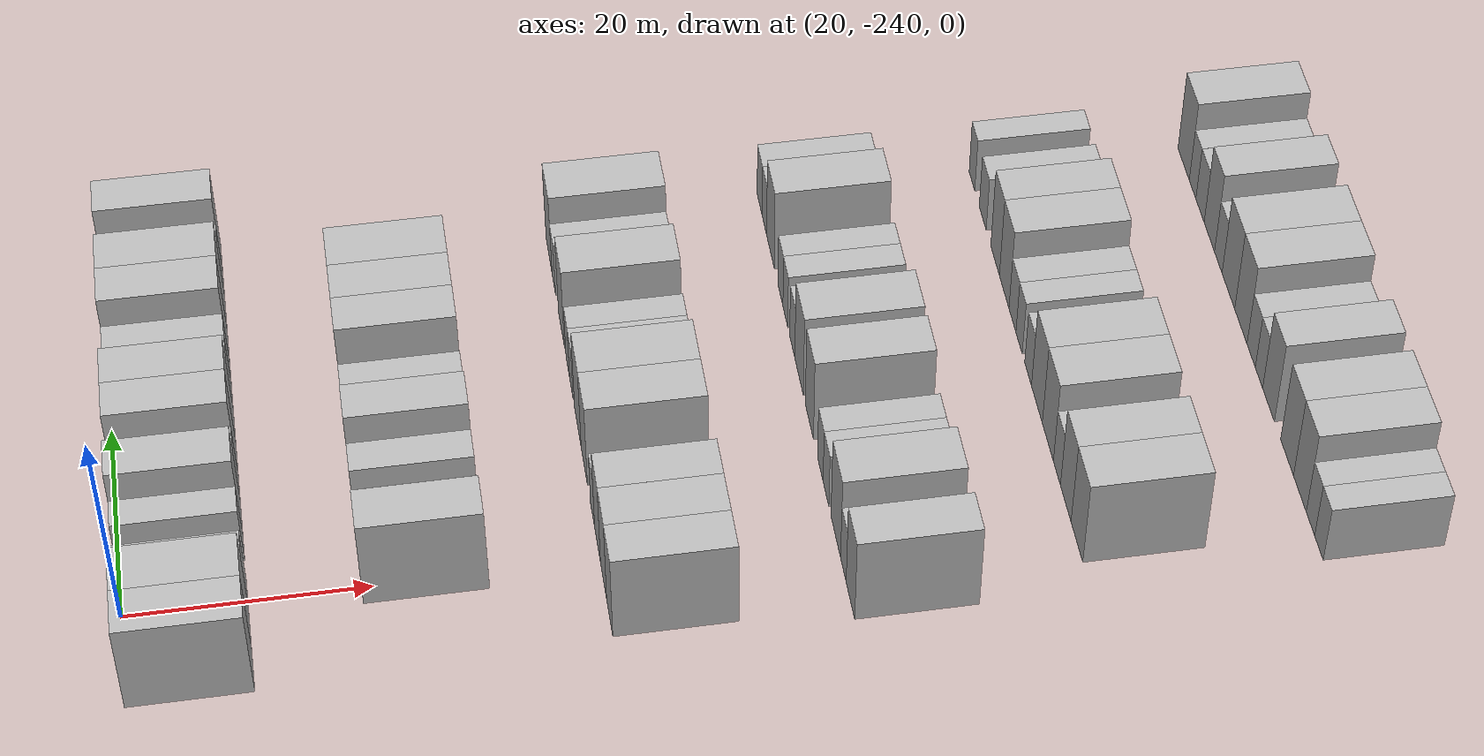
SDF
<sdf version="1.6">
 <world name="default">
  <model name="building_28">
   <static>1</static>
   <pose>25.0000 -246.9966 0 0.000000 0.000000 0.000000</pose>
   <link name="link">
    <pose>0 0 4.50 0 0 0</pose>
    <collision name="collision"><geometry><box><size>10.0000 4.2237 9.0000</size></box></geometry></collision>
    <visual name="visual">
     <cast_shadows>0</cast_shadows>
     <geometry><box><size>10.0000 4.2237 9.0000</size></box></geometry>
     <material>
      <script>
       <uri>model://HANNAS_wall/materials/scripts</uri>
       <uri>model://HANNAS_wall/materials/textures</uri>
       <name>vrc/HANNAS_wall</name>
      </script>
     </material>
    </visual>
   </link>
  </model>
  <model name="building_29">
   <static>1</static>
   <pose>25.0000 -242.7215 0 0.000000 0.000000 0.000000</pose>
   <link name="link">
    <pose>0 0 4.50 0 0 0</pose>
    <collision name="collision"><geometry><box><size>10.0000 4.3265 9.0000</size></box></geometry></collision>
    <visual name="visual">
     <cast_shadows>0</cast_shadows>
     <geometry><box><size>10.0000 4.3265 9.0000</size></box></geometry>
     <material>
      <script>
       <uri>model://HANNAS_wall/materials/scripts</uri>
       <uri>model://HANNAS_wall/materials/textures</uri>
       <name>vrc/HANNAS_wall</name>
      </script>
     </material>
    </visual>
   </link>
  </model>
  <model name="building_30">
   <static>1</static>
   <pose>25.0000 -239.1550 0 0.000000 0.000000 0.000000</pose>
   <link name="link">
    <pose>0 0 3.00 0 0 0</pose>
    <collision name="collision"><geometry><box><size>10.0000 2.8065 6.0000</size></box></geometry></collision>
    <visual name="visual">
     <cast_shadows>0</cast_shadows>
     <geometry><box><size>10.0000 2.8065 6.0000</size></box></geometry>
     <material>
      <script>
       <uri>model://HANNAS_wall/materials/scripts</uri>
       <uri>model://HANNAS_wall/materials/textures</uri>
       <name>vrc/HANNAS_wall</name>
      </script>
     </material>
    </visual>
   </link>
  </model>
  <model name="building_31">
   <static>1</static>
   <pose>25.0000 -234.4203 0 0.000000 0.000000 0.000000</pose>
   <link name="link">
    <pose>0 0 3.00 0 0 0</pose>
    <collision name="collision"><geometry><box><size>10.0000 2.6629 6.0000</size></box></geometry></collision>
    <visual name="visual">
     <cast_shadows>0</cast_shadows>
     <geometry><box><size>10.0000 2.6629 6.0000</size></box></geometry>
     <material>
      <script>
       <uri>model://HANNAS_wall/materials/scripts</uri>
       <uri>model://HANNAS_wall/materials/textures</uri>
       <name>vrc/HANNAS_wall</name>
      </script>
     </material>
    </visual>
   </link>
  </model>
  <model name="building_32">
   <static>1</static>
   <pose>25.0000 -231.2151 0 0.000000 0.000000 0.000000</pose>
   <link name="link">
    <pose>0 0 4.50 0 0 0</pose>
    <collision name="collision"><geometry><box><size>10.0000 3.7475 9.0000</size></box></geometry></collision>
    <visual name="visual">
     <cast_shadows>0</cast_shadows>
     <geometry><box><size>10.0000 3.7475 9.0000</size></box></geometry>
     <material>
      <script>
       <uri>model://HANNAS_wall/materials/scripts</uri>
       <uri>model://HANNAS_wall/materials/textures</uri>
       <name>vrc/HANNAS_wall</name>
      </script>
     </material>
    </visual>
   </link>
  </model>
  <model name="building_33">
   <static>1</static>
   <pose>25.0000 -228.0153 0 0.000000 0.000000 0.000000</pose>
   <link name="link">
    <pose>0 0 3.00 0 0 0</pose>
    <collision name="collision"><geometry><box><size>10.0000 2.6523 6.0000</size></box></geometry></collision>
    <visual name="visual">
     <cast_shadows>0</cast_shadows>
     <geometry><box><size>10.0000 2.6523 6.0000</size></box></geometry>
     <material>
      <script>
       <uri>model://HANNAS_wall/materials/scripts</uri>
       <uri>model://HANNAS_wall/materials/textures</uri>
       <name>vrc/HANNAS_wall</name>
      </script>
     </material>
    </visual>
   </link>
  </model>
  <model name="building_34">
   <static>1</static>
   <pose>25.0000 -224.8545 0 0.000000 0.000000 0.000000</pose>
   <link name="link">
    <pose>0 0 4.50 0 0 0</pose>
    <collision name="collision"><geometry><box><size>10.0000 3.6692 9.0000</size></box></geometry></collision>
    <visual name="visual">
     <cast_shadows>0</cast_shadows>
     <geometry><box><size>10.0000 3.6692 9.0000</size></box></geometry>
     <material>
      <script>
       <uri>model://HANNAS_wall/materials/scripts</uri>
       <uri>model://HANNAS_wall/materials/textures</uri>
       <name>vrc/HANNAS_wall</name>
      </script>
     </material>
    </visual>
   </link>
  </model>
  <model name="building_35">
   <static>1</static>
   <pose>25.0000 -221.1107 0 0.000000 0.000000 0.000000</pose>
   <link name="link">
    <pose>0 0 4.50 0 0 0</pose>
    <collision name="collision"><geometry><box><size>10.0000 3.8185 9.0000</size></box></geometry></collision>
    <visual name="visual">
     <cast_shadows>0</cast_shadows>
     <geometry><box><size>10.0000 3.8185 9.0000</size></box></geometry>
     <material>
      <script>
       <uri>model://HANNAS_wall/materials/scripts</uri>
       <uri>model://HANNAS_wall/materials/textures</uri>
       <name>vrc/HANNAS_wall</name>
      </script>
     </material>
    </visual>
   </link>
  </model>
  <model name="building_36">
   <static>1</static>
   <pose>25.0000 -217.7368 0 0.000000 0.000000 0.000000</pose>
   <link name="link">
    <pose>0 0 3.00 0 0 0</pose>
    <collision name="collision"><geometry><box><size>10.0000 2.9292 6.0000</size></box></geometry></collision>
    <visual name="visual">
     <cast_shadows>0</cast_shadows>
     <geometry><box><size>10.0000 2.9292 6.0000</size></box></geometry>
     <material>
      <script>
       <uri>model://HANNAS_wall/materials/scripts</uri>
       <uri>model://HANNAS_wall/materials/textures</uri>
       <name>vrc/HANNAS_wall</name>
      </script>
     </material>
    </visual>
   </link>
  </model>
  <model name="building_37">
   <static>1</static>
   <pose>25.0000 -215.0235 0 0.000000 0.000000 0.000000</pose>
   <link name="link">
    <pose>0 0 3.00 0 0 0</pose>
    <collision name="collision"><geometry><box><size>10.0000 2.4975 6.0000</size></box></geometry></collision>
    <visual name="visual">
     <cast_shadows>0</cast_shadows>
     <geometry><box><size>10.0000 2.4975 6.0000</size></box></geometry>
     <material>
      <script>
       <uri>model://HANNAS_wall/materials/scripts</uri>
       <uri>model://HANNAS_wall/materials/textures</uri>
       <name>vrc/HANNAS_wall</name>
      </script>
     </material>
    </visual>
   </link>
  </model>
  <model name="building_38">
   <static>1</static>
   <pose>25.0000 -211.8472 0 0.000000 0.000000 0.000000</pose>
   <link name="link">
    <pose>0 0 4.50 0 0 0</pose>
    <collision name="collision"><geometry><box><size>10.0000 3.8551 9.0000</size></box></geometry></collision>
    <visual name="visual">
     <cast_shadows>0</cast_shadows>
     <geometry><box><size>10.0000 3.8551 9.0000</size></box></geometry>
     <material>
      <script>
       <uri>model://HANNAS_wall/materials/scripts</uri>
       <uri>model://HANNAS_wall/materials/textures</uri>
       <name>vrc/HANNAS_wall</name>
      </script>
     </material>
    </visual>
   </link>
  </model>
  <model name="building_39">
   <static>1</static>
   <pose>25.0000 -207.8907 0 0.000000 0.000000 0.000000</pose>
   <link name="link">
    <pose>0 0 4.50 0 0 0</pose>
    <collision name="collision"><geometry><box><size>10.0000 4.0579 9.0000</size></box></geometry></collision>
    <visual name="visual">
     <cast_shadows>0</cast_shadows>
     <geometry><box><size>10.0000 4.0579 9.0000</size></box></geometry>
     <material>
      <script>
       <uri>model://HANNAS_wall/materials/scripts</uri>
       <uri>model://HANNAS_wall/materials/textures</uri>
       <name>vrc/HANNAS_wall</name>
      </script>
     </material>
    </visual>
   </link>
  </model>
  <model name="building_40">
   <static>1</static>
   <pose>25.0000 -204.4781 0 0.000000 0.000000 0.000000</pose>
   <link name="link">
    <pose>0 0 3.00 0 0 0</pose>
    <collision name="collision"><geometry><box><size>10.0000 2.7674 6.0000</size></box></geometry></collision>
    <visual name="visual">
     <cast_shadows>0</cast_shadows>
     <geometry><box><size>10.0000 2.7674 6.0000</size></box></geometry>
     <material>
      <script>
       <uri>model://HANNAS_wall/materials/scripts</uri>
       <uri>model://HANNAS_wall/materials/textures</uri>
       <name>vrc/HANNAS_wall</name>
      </script>
     </material>
    </visual>
   </link>
  </model>
  <model name="building_41">
   <static>1</static>
   <pose>25.0000 -201.2248 0 0.000000 0.000000 0.000000</pose>
   <link name="link">
    <pose>0 0 4.50 0 0 0</pose>
    <collision name="collision"><geometry><box><size>10.0000 3.7392 9.0000</size></box></geometry></collision>
    <visual name="visual">
     <cast_shadows>0</cast_shadows>
     <geometry><box><size>10.0000 3.7392 9.0000</size></box></geometry>
     <material>
      <script>
       <uri>model://HANNAS_wall/materials/scripts</uri>
       <uri>model://HANNAS_wall/materials/textures</uri>
       <name>vrc/HANNAS_wall</name>
      </script>
     </material>
    </visual>
   </link>
  </model>
  <model name="building_191">
   <static>1</static>
   <pose>44.0000 -239.6040 0 0.000000 0.000000 0.000000</pose>
   <link name="link">
    <pose>0 0 4.50 0 0 0</pose>
    <collision name="collision"><geometry><box><size>10.0000 4.0333 9.0000</size></box></geometry></collision>
    <visual name="visual">
     <cast_shadows>0</cast_shadows>
     <geometry><box><size>10.0000 4.0333 9.0000</size></box></geometry>
     <material>
      <script>
       <uri>model://HANNAS_wall/materials/scripts</uri>
       <uri>model://HANNAS_wall/materials/textures</uri>
       <name>vrc/HANNAS_wall</name>
      </script>
     </material>
    </visual>
   </link>
  </model>
  <model name="building_192">
   <static>1</static>
   <pose>44.0000 -236.2359 0 0.000000 0.000000 0.000000</pose>
   <link name="link">
    <pose>0 0 3.00 0 0 0</pose>
    <collision name="collision"><geometry><box><size>10.0000 2.7029 6.0000</size></box></geometry></collision>
    <visual name="visual">
     <cast_shadows>0</cast_shadows>
     <geometry><box><size>10.0000 2.7029 6.0000</size></box></geometry>
     <material>
      <script>
       <uri>model://HANNAS_wall/materials/scripts</uri>
       <uri>model://HANNAS_wall/materials/textures</uri>
       <name>vrc/HANNAS_wall</name>
      </script>
     </material>
    </visual>
   </link>
  </model>
  <model name="building_193">
   <static>1</static>
   <pose>44.0000 -231.3891 0 0.000000 0.000000 0.000000</pose>
   <link name="link">
    <pose>0 0 3.00 0 0 0</pose>
    <collision name="collision"><geometry><box><size>10.0000 2.9909 6.0000</size></box></geometry></collision>
    <visual name="visual">
     <cast_shadows>0</cast_shadows>
     <geometry><box><size>10.0000 2.9909 6.0000</size></box></geometry>
     <material>
      <script>
       <uri>model://HANNAS_wall/materials/scripts</uri>
       <uri>model://HANNAS_wall/materials/textures</uri>
       <name>vrc/HANNAS_wall</name>
      </script>
     </material>
    </visual>
   </link>
  </model>
  <model name="building_194">
   <static>1</static>
   <pose>44.0000 -228.0732 0 0.000000 0.000000 0.000000</pose>
   <link name="link">
    <pose>0 0 4.50 0 0 0</pose>
    <collision name="collision"><geometry><box><size>10.0000 3.6408 9.0000</size></box></geometry></collision>
    <visual name="visual">
     <cast_shadows>0</cast_shadows>
     <geometry><box><size>10.0000 3.6408 9.0000</size></box></geometry>
     <material>
      <script>
       <uri>model://HANNAS_wall/materials/scripts</uri>
       <uri>model://HANNAS_wall/materials/textures</uri>
       <name>vrc/HANNAS_wall</name>
      </script>
     </material>
    </visual>
   </link>
  </model>
  <model name="building_195">
   <static>1</static>
   <pose>44.0000 -225.0238 0 0.000000 0.000000 0.000000</pose>
   <link name="link">
    <pose>0 0 3.00 0 0 0</pose>
    <collision name="collision"><geometry><box><size>10.0000 2.4579 6.0000</size></box></geometry></collision>
    <visual name="visual">
     <cast_shadows>0</cast_shadows>
     <geometry><box><size>10.0000 2.4579 6.0000</size></box></geometry>
     <material>
      <script>
       <uri>model://HANNAS_wall/materials/scripts</uri>
       <uri>model://HANNAS_wall/materials/textures</uri>
       <name>vrc/HANNAS_wall</name>
      </script>
     </material>
    </visual>
   </link>
  </model>
  <model name="building_196">
   <static>1</static>
   <pose>44.0000 -222.4413 0 0.000000 0.000000 0.000000</pose>
   <link name="link">
    <pose>0 0 3.00 0 0 0</pose>
    <collision name="collision"><geometry><box><size>10.0000 2.7071 6.0000</size></box></geometry></collision>
    <visual name="visual">
     <cast_shadows>0</cast_shadows>
     <geometry><box><size>10.0000 2.7071 6.0000</size></box></geometry>
     <material>
      <script>
       <uri>model://HANNAS_wall/materials/scripts</uri>
       <uri>model://HANNAS_wall/materials/textures</uri>
       <name>vrc/HANNAS_wall</name>
      </script>
     </material>
    </visual>
   </link>
  </model>
  <model name="building_197">
   <static>1</static>
   <pose>44.0000 -218.2252 0 0.000000 0.000000 0.000000</pose>
   <link name="link">
    <pose>0 0 4.50 0 0 0</pose>
    <collision name="collision"><geometry><box><size>10.0000 3.7250 9.0000</size></box></geometry></collision>
    <visual name="visual">
     <cast_shadows>0</cast_shadows>
     <geometry><box><size>10.0000 3.7250 9.0000</size></box></geometry>
     <material>
      <script>
       <uri>model://HANNAS_wall/materials/scripts</uri>
       <uri>model://HANNAS_wall/materials/textures</uri>
       <name>vrc/HANNAS_wall</name>
      </script>
     </material>
    </visual>
   </link>
  </model>
  <model name="building_198">
   <static>1</static>
   <pose>44.0000 -214.4440 0 0.000000 0.000000 0.000000</pose>
   <link name="link">
    <pose>0 0 4.50 0 0 0</pose>
    <collision name="collision"><geometry><box><size>10.0000 3.8374 9.0000</size></box></geometry></collision>
    <visual name="visual">
     <cast_shadows>0</cast_shadows>
     <geometry><box><size>10.0000 3.8374 9.0000</size></box></geometry>
     <material>
      <script>
       <uri>model://HANNAS_wall/materials/scripts</uri>
       <uri>model://HANNAS_wall/materials/textures</uri>
       <name>vrc/HANNAS_wall</name>
      </script>
     </material>
    </visual>
   </link>
  </model>
  <model name="building_199">
   <static>1</static>
   <pose>44.0000 -210.3079 0 0.000000 0.000000 0.000000</pose>
   <link name="link">
    <pose>0 0 4.50 0 0 0</pose>
    <collision name="collision"><geometry><box><size>10.0000 4.4347 9.0000</size></box></geometry></collision>
    <visual name="visual">
     <cast_shadows>0</cast_shadows>
     <geometry><box><size>10.0000 4.4347 9.0000</size></box></geometry>
     <material>
      <script>
       <uri>model://HANNAS_wall/materials/scripts</uri>
       <uri>model://HANNAS_wall/materials/textures</uri>
       <name>vrc/HANNAS_wall</name>
      </script>
     </material>
    </visual>
   </link>
  </model>
  <model name="building_200">
   <static>1</static>
   <pose>44.0000 -206.6246 0 0.000000 0.000000 0.000000</pose>
   <link name="link">
    <pose>0 0 3.00 0 0 0</pose>
    <collision name="collision"><geometry><box><size>10.0000 2.9321 6.0000</size></box></geometry></collision>
    <visual name="visual">
     <cast_shadows>0</cast_shadows>
     <geometry><box><size>10.0000 2.9321 6.0000</size></box></geometry>
     <material>
      <script>
       <uri>model://HANNAS_wall/materials/scripts</uri>
       <uri>model://HANNAS_wall/materials/textures</uri>
       <name>vrc/HANNAS_wall</name>
      </script>
     </material>
    </visual>
   </link>
  </model>
  <model name="building_371">
   <static>1</static>
   <pose>63.0000 -246.1018 0 0.000000 0.000000 0.000000</pose>
   <link name="link">
    <pose>0 0 4.50 0 0 0</pose>
    <collision name="collision"><geometry><box><size>10.0000 3.7939 9.0000</size></box></geometry></collision>
    <visual name="visual">
     <cast_shadows>0</cast_shadows>
     <geometry><box><size>10.0000 3.7939 9.0000</size></box></geometry>
     <material>
      <script>
       <uri>model://HANNAS_wall/materials/scripts</uri>
       <uri>model://HANNAS_wall/materials/textures</uri>
       <name>vrc/HANNAS_wall</name>
      </script>
     </material>
    </visual>
   </link>
  </model>
  <model name="building_372">
   <static>1</static>
   <pose>63.0000 -242.2751 0 0.000000 0.000000 0.000000</pose>
   <link name="link">
    <pose>0 0 4.50 0 0 0</pose>
    <collision name="collision"><geometry><box><size>10.0000 3.8596 9.0000</size></box></geometry></collision>
    <visual name="visual">
     <cast_shadows>0</cast_shadows>
     <geometry><box><size>10.0000 3.8596 9.0000</size></box></geometry>
     <material>
      <script>
       <uri>model://HANNAS_wall/materials/scripts</uri>
       <uri>model://HANNAS_wall/materials/textures</uri>
       <name>vrc/HANNAS_wall</name>
      </script>
     </material>
    </visual>
   </link>
  </model>
  <model name="building_373">
   <static>1</static>
   <pose>63.0000 -238.5086 0 0.000000 0.000000 0.000000</pose>
   <link name="link">
    <pose>0 0 4.50 0 0 0</pose>
    <collision name="collision"><geometry><box><size>10.0000 3.6732 9.0000</size></box></geometry></collision>
    <visual name="visual">
     <cast_shadows>0</cast_shadows>
     <geometry><box><size>10.0000 3.6732 9.0000</size></box></geometry>
     <material>
      <script>
       <uri>model://HANNAS_wall/materials/scripts</uri>
       <uri>model://HANNAS_wall/materials/textures</uri>
       <name>vrc/HANNAS_wall</name>
      </script>
     </material>
    </visual>
   </link>
  </model>
  <model name="building_374">
   <static>1</static>
   <pose>63.0000 -235.3271 0 0.000000 0.000000 0.000000</pose>
   <link name="link">
    <pose>0 0 3.00 0 0 0</pose>
    <collision name="collision"><geometry><box><size>10.0000 2.6899 6.0000</size></box></geometry></collision>
    <visual name="visual">
     <cast_shadows>0</cast_shadows>
     <geometry><box><size>10.0000 2.6899 6.0000</size></box></geometry>
     <material>
      <script>
       <uri>model://HANNAS_wall/materials/scripts</uri>
       <uri>model://HANNAS_wall/materials/textures</uri>
       <name>vrc/HANNAS_wall</name>
      </script>
     </material>
    </visual>
   </link>
  </model>
  <model name="building_375">
   <static>1</static>
   <pose>63.0000 -229.9203 0 0.000000 0.000000 0.000000</pose>
   <link name="link">
    <pose>0 0 4.50 0 0 0</pose>
    <collision name="collision"><geometry><box><size>10.0000 4.1235 9.0000</size></box></geometry></collision>
    <visual name="visual">
     <cast_shadows>0</cast_shadows>
     <geometry><box><size>10.0000 4.1235 9.0000</size></box></geometry>
     <material>
      <script>
       <uri>model://HANNAS_wall/materials/scripts</uri>
       <uri>model://HANNAS_wall/materials/textures</uri>
       <name>vrc/HANNAS_wall</name>
      </script>
     </material>
    </visual>
   </link>
  </model>
  <model name="building_376">
   <static>1</static>
   <pose>63.0000 -225.6266 0 0.000000 0.000000 0.000000</pose>
   <link name="link">
    <pose>0 0 4.50 0 0 0</pose>
    <collision name="collision"><geometry><box><size>10.0000 4.4639 9.0000</size></box></geometry></collision>
    <visual name="visual">
     <cast_shadows>0</cast_shadows>
     <geometry><box><size>10.0000 4.4639 9.0000</size></box></geometry>
     <material>
      <script>
       <uri>model://HANNAS_wall/materials/scripts</uri>
       <uri>model://HANNAS_wall/materials/textures</uri>
       <name>vrc/HANNAS_wall</name>
      </script>
     </material>
    </visual>
   </link>
  </model>
  <model name="building_377">
   <static>1</static>
   <pose>63.0000 -221.1698 0 0.000000 0.000000 0.000000</pose>
   <link name="link">
    <pose>0 0 3.00 0 0 0</pose>
    <collision name="collision"><geometry><box><size>10.0000 2.4499 6.0000</size></box></geometry></collision>
    <visual name="visual">
     <cast_shadows>0</cast_shadows>
     <geometry><box><size>10.0000 2.4499 6.0000</size></box></geometry>
     <material>
      <script>
       <uri>model://HANNAS_wall/materials/scripts</uri>
       <uri>model://HANNAS_wall/materials/textures</uri>
       <name>vrc/HANNAS_wall</name>
      </script>
     </material>
    </visual>
   </link>
  </model>
  <model name="building_378">
   <static>1</static>
   <pose>63.0000 -218.6879 0 0.000000 0.000000 0.000000</pose>
   <link name="link">
    <pose>0 0 3.00 0 0 0</pose>
    <collision name="collision"><geometry><box><size>10.0000 2.5139 6.0000</size></box></geometry></collision>
    <visual name="visual">
     <cast_shadows>0</cast_shadows>
     <geometry><box><size>10.0000 2.5139 6.0000</size></box></geometry>
     <material>
      <script>
       <uri>model://HANNAS_wall/materials/scripts</uri>
       <uri>model://HANNAS_wall/materials/textures</uri>
       <name>vrc/HANNAS_wall</name>
      </script>
     </material>
    </visual>
   </link>
  </model>
  <model name="building_379">
   <static>1</static>
   <pose>63.0000 -214.2768 0 0.000000 0.000000 0.000000</pose>
   <link name="link">
    <pose>0 0 4.50 0 0 0</pose>
    <collision name="collision"><geometry><box><size>10.0000 4.3082 9.0000</size></box></geometry></collision>
    <visual name="visual">
     <cast_shadows>0</cast_shadows>
     <geometry><box><size>10.0000 4.3082 9.0000</size></box></geometry>
     <material>
      <script>
       <uri>model://HANNAS_wall/materials/scripts</uri>
       <uri>model://HANNAS_wall/materials/textures</uri>
       <name>vrc/HANNAS_wall</name>
      </script>
     </material>
    </visual>
   </link>
  </model>
  <model name="building_380">
   <static>1</static>
   <pose>63.0000 -208.8006 0 0.000000 0.000000 0.000000</pose>
   <link name="link">
    <pose>0 0 3.00 0 0 0</pose>
    <collision name="collision"><geometry><box><size>10.0000 2.6441 6.0000</size></box></geometry></collision>
    <visual name="visual">
     <cast_shadows>0</cast_shadows>
     <geometry><box><size>10.0000 2.6441 6.0000</size></box></geometry>
     <material>
      <script>
       <uri>model://HANNAS_wall/materials/scripts</uri>
       <uri>model://HANNAS_wall/materials/textures</uri>
       <name>vrc/HANNAS_wall</name>
      </script>
     </material>
    </visual>
   </link>
  </model>
  <model name="building_381">
   <static>1</static>
   <pose>63.0000 -205.2971 0 0.000000 0.000000 0.000000</pose>
   <link name="link">
    <pose>0 0 4.50 0 0 0</pose>
    <collision name="collision"><geometry><box><size>10.0000 4.3631 9.0000</size></box></geometry></collision>
    <visual name="visual">
     <cast_shadows>0</cast_shadows>
     <geometry><box><size>10.0000 4.3631 9.0000</size></box></geometry>
     <material>
      <script>
       <uri>model://HANNAS_wall/materials/scripts</uri>
       <uri>model://HANNAS_wall/materials/textures</uri>
       <name>vrc/HANNAS_wall</name>
      </script>
     </material>
    </visual>
   </link>
  </model>
  <model name="building_532">
   <static>1</static>
   <pose>82.0000 -247.2881 0 0.000000 0.000000 0.000000</pose>
   <link name="link">
    <pose>0 0 4.50 0 0 0</pose>
    <collision name="collision"><geometry><box><size>10.0000 3.8486 9.0000</size></box></geometry></collision>
    <visual name="visual">
     <cast_shadows>0</cast_shadows>
     <geometry><box><size>10.0000 3.8486 9.0000</size></box></geometry>
     <material>
      <script>
       <uri>model://HANNAS_wall/materials/scripts</uri>
       <uri>model://HANNAS_wall/materials/textures</uri>
       <name>vrc/HANNAS_wall</name>
      </script>
     </material>
    </visual>
   </link>
  </model>
  <model name="building_533">
   <static>1</static>
   <pose>82.0000 -244.0759 0 0.000000 0.000000 0.000000</pose>
   <link name="link">
    <pose>0 0 3.00 0 0 0</pose>
    <collision name="collision"><geometry><box><size>10.0000 2.5757 6.0000</size></box></geometry></collision>
    <visual name="visual">
     <cast_shadows>0</cast_shadows>
     <geometry><box><size>10.0000 2.5757 6.0000</size></box></geometry>
     <material>
      <script>
       <uri>model://HANNAS_wall/materials/scripts</uri>
       <uri>model://HANNAS_wall/materials/textures</uri>
       <name>vrc/HANNAS_wall</name>
      </script>
     </material>
    </visual>
   </link>
  </model>
  <model name="building_534">
   <static>1</static>
   <pose>82.0000 -240.5630 0 0.000000 0.000000 0.000000</pose>
   <link name="link">
    <pose>0 0 4.50 0 0 0</pose>
    <collision name="collision"><geometry><box><size>10.0000 4.4502 9.0000</size></box></geometry></collision>
    <visual name="visual">
     <cast_shadows>0</cast_shadows>
     <geometry><box><size>10.0000 4.4502 9.0000</size></box></geometry>
     <material>
      <script>
       <uri>model://HANNAS_wall/materials/scripts</uri>
       <uri>model://HANNAS_wall/materials/textures</uri>
       <name>vrc/HANNAS_wall</name>
      </script>
     </material>
    </visual>
   </link>
  </model>
  <model name="building_535">
   <static>1</static>
   <pose>82.0000 -235.9541 0 0.000000 0.000000 0.000000</pose>
   <link name="link">
    <pose>0 0 3.00 0 0 0</pose>
    <collision name="collision"><geometry><box><size>10.0000 2.7674 6.0000</size></box></geometry></collision>
    <visual name="visual">
     <cast_shadows>0</cast_shadows>
     <geometry><box><size>10.0000 2.7674 6.0000</size></box></geometry>
     <material>
      <script>
       <uri>model://HANNAS_wall/materials/scripts</uri>
       <uri>model://HANNAS_wall/materials/textures</uri>
       <name>vrc/HANNAS_wall</name>
      </script>
     </material>
    </visual>
   </link>
  </model>
  <model name="building_536">
   <static>1</static>
   <pose>82.0000 -233.2412 0 0.000000 0.000000 0.000000</pose>
   <link name="link">
    <pose>0 0 3.00 0 0 0</pose>
    <collision name="collision"><geometry><box><size>10.0000 2.6583 6.0000</size></box></geometry></collision>
    <visual name="visual">
     <cast_shadows>0</cast_shadows>
     <geometry><box><size>10.0000 2.6583 6.0000</size></box></geometry>
     <material>
      <script>
       <uri>model://HANNAS_wall/materials/scripts</uri>
       <uri>model://HANNAS_wall/materials/textures</uri>
       <name>vrc/HANNAS_wall</name>
      </script>
     </material>
    </visual>
   </link>
  </model>
  <model name="building_537">
   <static>1</static>
   <pose>82.0000 -227.9029 0 0.000000 0.000000 0.000000</pose>
   <link name="link">
    <pose>0 0 4.50 0 0 0</pose>
    <collision name="collision"><geometry><box><size>10.0000 4.0184 9.0000</size></box></geometry></collision>
    <visual name="visual">
     <cast_shadows>0</cast_shadows>
     <geometry><box><size>10.0000 4.0184 9.0000</size></box></geometry>
     <material>
      <script>
       <uri>model://HANNAS_wall/materials/scripts</uri>
       <uri>model://HANNAS_wall/materials/textures</uri>
       <name>vrc/HANNAS_wall</name>
      </script>
     </material>
    </visual>
   </link>
  </model>
  <model name="building_538">
   <static>1</static>
   <pose>82.0000 -222.7469 0 0.000000 0.000000 0.000000</pose>
   <link name="link">
    <pose>0 0 4.50 0 0 0</pose>
    <collision name="collision"><geometry><box><size>10.0000 4.2935 9.0000</size></box></geometry></collision>
    <visual name="visual">
     <cast_shadows>0</cast_shadows>
     <geometry><box><size>10.0000 4.2935 9.0000</size></box></geometry>
     <material>
      <script>
       <uri>model://HANNAS_wall/materials/scripts</uri>
       <uri>model://HANNAS_wall/materials/textures</uri>
       <name>vrc/HANNAS_wall</name>
      </script>
     </material>
    </visual>
   </link>
  </model>
  <model name="building_539">
   <static>1</static>
   <pose>82.0000 -219.2763 0 0.000000 0.000000 0.000000</pose>
   <link name="link">
    <pose>0 0 3.00 0 0 0</pose>
    <collision name="collision"><geometry><box><size>10.0000 2.6476 6.0000</size></box></geometry></collision>
    <visual name="visual">
     <cast_shadows>0</cast_shadows>
     <geometry><box><size>10.0000 2.6476 6.0000</size></box></geometry>
     <material>
      <script>
       <uri>model://HANNAS_wall/materials/scripts</uri>
       <uri>model://HANNAS_wall/materials/textures</uri>
       <name>vrc/HANNAS_wall</name>
      </script>
     </material>
    </visual>
   </link>
  </model>
  <model name="building_540">
   <static>1</static>
   <pose>82.0000 -215.6691 0 0.000000 0.000000 0.000000</pose>
   <link name="link">
    <pose>0 0 3.00 0 0 0</pose>
    <collision name="collision"><geometry><box><size>10.0000 2.5668 6.0000</size></box></geometry></collision>
    <visual name="visual">
     <cast_shadows>0</cast_shadows>
     <geometry><box><size>10.0000 2.5668 6.0000</size></box></geometry>
     <material>
      <script>
       <uri>model://HANNAS_wall/materials/scripts</uri>
       <uri>model://HANNAS_wall/materials/textures</uri>
       <name>vrc/HANNAS_wall</name>
      </script>
     </material>
    </visual>
   </link>
  </model>
  <model name="building_541">
   <static>1</static>
   <pose>82.0000 -213.1281 0 0.000000 0.000000 0.000000</pose>
   <link name="link">
    <pose>0 0 3.00 0 0 0</pose>
    <collision name="collision"><geometry><box><size>10.0000 2.5151 6.0000</size></box></geometry></collision>
    <visual name="visual">
     <cast_shadows>0</cast_shadows>
     <geometry><box><size>10.0000 2.5151 6.0000</size></box></geometry>
     <material>
      <script>
       <uri>model://HANNAS_wall/materials/scripts</uri>
       <uri>model://HANNAS_wall/materials/textures</uri>
       <name>vrc/HANNAS_wall</name>
      </script>
     </material>
    </visual>
   </link>
  </model>
  <model name="building_542">
   <static>1</static>
   <pose>82.0000 -207.8113 0 0.000000 0.000000 0.000000</pose>
   <link name="link">
    <pose>0 0 4.50 0 0 0</pose>
    <collision name="collision"><geometry><box><size>10.0000 4.1187 9.0000</size></box></geometry></collision>
    <visual name="visual">
     <cast_shadows>0</cast_shadows>
     <geometry><box><size>10.0000 4.1187 9.0000</size></box></geometry>
     <material>
      <script>
       <uri>model://HANNAS_wall/materials/scripts</uri>
       <uri>model://HANNAS_wall/materials/textures</uri>
       <name>vrc/HANNAS_wall</name>
      </script>
     </material>
    </visual>
   </link>
  </model>
  <model name="building_543">
   <static>1</static>
   <pose>82.0000 -204.5190 0 0.000000 0.000000 0.000000</pose>
   <link name="link">
    <pose>0 0 3.00 0 0 0</pose>
    <collision name="collision"><geometry><box><size>10.0000 2.4658 6.0000</size></box></geometry></collision>
    <visual name="visual">
     <cast_shadows>0</cast_shadows>
     <geometry><box><size>10.0000 2.4658 6.0000</size></box></geometry>
     <material>
      <script>
       <uri>model://HANNAS_wall/materials/scripts</uri>
       <uri>model://HANNAS_wall/materials/textures</uri>
       <name>vrc/HANNAS_wall</name>
      </script>
     </material>
    </visual>
   </link>
  </model>
  <model name="building_544">
   <static>1</static>
   <pose>82.0000 -201.8797 0 0.000000 0.000000 0.000000</pose>
   <link name="link">
    <pose>0 0 3.00 0 0 0</pose>
    <collision name="collision"><geometry><box><size>10.0000 2.8127 6.0000</size></box></geometry></collision>
    <visual name="visual">
     <cast_shadows>0</cast_shadows>
     <geometry><box><size>10.0000 2.8127 6.0000</size></box></geometry>
     <material>
      <script>
       <uri>model://HANNAS_wall/materials/scripts</uri>
       <uri>model://HANNAS_wall/materials/textures</uri>
       <name>vrc/HANNAS_wall</name>
      </script>
     </material>
    </visual>
   </link>
  </model>
  <model name="building_699">
   <static>1</static>
   <pose>101.0000 -244.1212 0 0.000000 0.000000 0.000000</pose>
   <link name="link">
    <pose>0 0 4.50 0 0 0</pose>
    <collision name="collision"><geometry><box><size>10.0000 4.3092 9.0000</size></box></geometry></collision>
    <visual name="visual">
     <cast_shadows>0</cast_shadows>
     <geometry><box><size>10.0000 4.3092 9.0000</size></box></geometry>
     <material>
      <script>
       <uri>model://HANNAS_wall/materials/scripts</uri>
       <uri>model://HANNAS_wall/materials/textures</uri>
       <name>vrc/HANNAS_wall</name>
      </script>
     </material>
    </visual>
   </link>
  </model>
  <model name="building_700">
   <static>1</static>
   <pose>101.0000 -239.9839 0 0.000000 0.000000 0.000000</pose>
   <link name="link">
    <pose>0 0 4.50 0 0 0</pose>
    <collision name="collision"><geometry><box><size>10.0000 3.9654 9.0000</size></box></geometry></collision>
    <visual name="visual">
     <cast_shadows>0</cast_shadows>
     <geometry><box><size>10.0000 3.9654 9.0000</size></box></geometry>
     <material>
      <script>
       <uri>model://HANNAS_wall/materials/scripts</uri>
       <uri>model://HANNAS_wall/materials/textures</uri>
       <name>vrc/HANNAS_wall</name>
      </script>
     </material>
    </visual>
   </link>
  </model>
  <model name="building_701">
   <static>1</static>
   <pose>101.0000 -236.6626 0 0.000000 0.000000 0.000000</pose>
   <link name="link">
    <pose>0 0 3.00 0 0 0</pose>
    <collision name="collision"><geometry><box><size>10.0000 2.6771 6.0000</size></box></geometry></collision>
    <visual name="visual">
     <cast_shadows>0</cast_shadows>
     <geometry><box><size>10.0000 2.6771 6.0000</size></box></geometry>
     <material>
      <script>
       <uri>model://HANNAS_wall/materials/scripts</uri>
       <uri>model://HANNAS_wall/materials/textures</uri>
       <name>vrc/HANNAS_wall</name>
      </script>
     </material>
    </visual>
   </link>
  </model>
  <model name="building_702">
   <static>1</static>
   <pose>101.0000 -233.1819 0 0.000000 0.000000 0.000000</pose>
   <link name="link">
    <pose>0 0 4.50 0 0 0</pose>
    <collision name="collision"><geometry><box><size>10.0000 4.2843 9.0000</size></box></geometry></collision>
    <visual name="visual">
     <cast_shadows>0</cast_shadows>
     <geometry><box><size>10.0000 4.2843 9.0000</size></box></geometry>
     <material>
      <script>
       <uri>model://HANNAS_wall/materials/scripts</uri>
       <uri>model://HANNAS_wall/materials/textures</uri>
       <name>vrc/HANNAS_wall</name>
      </script>
     </material>
    </visual>
   </link>
  </model>
  <model name="building_703">
   <static>1</static>
   <pose>101.0000 -228.9103 0 0.000000 0.000000 0.000000</pose>
   <link name="link">
    <pose>0 0 4.50 0 0 0</pose>
    <collision name="collision"><geometry><box><size>10.0000 4.2589 9.0000</size></box></geometry></collision>
    <visual name="visual">
     <cast_shadows>0</cast_shadows>
     <geometry><box><size>10.0000 4.2589 9.0000</size></box></geometry>
     <material>
      <script>
       <uri>model://HANNAS_wall/materials/scripts</uri>
       <uri>model://HANNAS_wall/materials/textures</uri>
       <name>vrc/HANNAS_wall</name>
      </script>
     </material>
    </visual>
   </link>
  </model>
  <model name="building_704">
   <static>1</static>
   <pose>101.0000 -225.4205 0 0.000000 0.000000 0.000000</pose>
   <link name="link">
    <pose>0 0 3.00 0 0 0</pose>
    <collision name="collision"><geometry><box><size>10.0000 2.7207 6.0000</size></box></geometry></collision>
    <visual name="visual">
     <cast_shadows>0</cast_shadows>
     <geometry><box><size>10.0000 2.7207 6.0000</size></box></geometry>
     <material>
      <script>
       <uri>model://HANNAS_wall/materials/scripts</uri>
       <uri>model://HANNAS_wall/materials/textures</uri>
       <name>vrc/HANNAS_wall</name>
      </script>
     </material>
    </visual>
   </link>
  </model>
  <model name="building_705">
   <static>1</static>
   <pose>101.0000 -221.7880 0 0.000000 0.000000 0.000000</pose>
   <link name="link">
    <pose>0 0 3.00 0 0 0</pose>
    <collision name="collision"><geometry><box><size>10.0000 2.5443 6.0000</size></box></geometry></collision>
    <visual name="visual">
     <cast_shadows>0</cast_shadows>
     <geometry><box><size>10.0000 2.5443 6.0000</size></box></geometry>
     <material>
      <script>
       <uri>model://HANNAS_wall/materials/scripts</uri>
       <uri>model://HANNAS_wall/materials/textures</uri>
       <name>vrc/HANNAS_wall</name>
      </script>
     </material>
    </visual>
   </link>
  </model>
  <model name="building_706">
   <static>1</static>
   <pose>101.0000 -219.0807 0 0.000000 0.000000 0.000000</pose>
   <link name="link">
    <pose>0 0 3.00 0 0 0</pose>
    <collision name="collision"><geometry><box><size>10.0000 2.8703 6.0000</size></box></geometry></collision>
    <visual name="visual">
     <cast_shadows>0</cast_shadows>
     <geometry><box><size>10.0000 2.8703 6.0000</size></box></geometry>
     <material>
      <script>
       <uri>model://HANNAS_wall/materials/scripts</uri>
       <uri>model://HANNAS_wall/materials/textures</uri>
       <name>vrc/HANNAS_wall</name>
      </script>
     </material>
    </visual>
   </link>
  </model>
  <model name="building_707">
   <static>1</static>
   <pose>101.0000 -215.6365 0 0.000000 0.000000 0.000000</pose>
   <link name="link">
    <pose>0 0 4.50 0 0 0</pose>
    <collision name="collision"><geometry><box><size>10.0000 4.0180 9.0000</size></box></geometry></collision>
    <visual name="visual">
     <cast_shadows>0</cast_shadows>
     <geometry><box><size>10.0000 4.0180 9.0000</size></box></geometry>
     <material>
      <script>
       <uri>model://HANNAS_wall/materials/scripts</uri>
       <uri>model://HANNAS_wall/materials/textures</uri>
       <name>vrc/HANNAS_wall</name>
      </script>
     </material>
    </visual>
   </link>
  </model>
  <model name="building_708">
   <static>1</static>
   <pose>101.0000 -211.8022 0 0.000000 0.000000 0.000000</pose>
   <link name="link">
    <pose>0 0 4.50 0 0 0</pose>
    <collision name="collision"><geometry><box><size>10.0000 3.6508 9.0000</size></box></geometry></collision>
    <visual name="visual">
     <cast_shadows>0</cast_shadows>
     <geometry><box><size>10.0000 3.6508 9.0000</size></box></geometry>
     <material>
      <script>
       <uri>model://HANNAS_wall/materials/scripts</uri>
       <uri>model://HANNAS_wall/materials/textures</uri>
       <name>vrc/HANNAS_wall</name>
      </script>
     </material>
    </visual>
   </link>
  </model>
  <model name="building_709">
   <static>1</static>
   <pose>101.0000 -206.4825 0 0.000000 0.000000 0.000000</pose>
   <link name="link">
    <pose>0 0 3.00 0 0 0</pose>
    <collision name="collision"><geometry><box><size>10.0000 2.9886 6.0000</size></box></geometry></collision>
    <visual name="visual">
     <cast_shadows>0</cast_shadows>
     <geometry><box><size>10.0000 2.9886 6.0000</size></box></geometry>
     <material>
      <script>
       <uri>model://HANNAS_wall/materials/scripts</uri>
       <uri>model://HANNAS_wall/materials/textures</uri>
       <name>vrc/HANNAS_wall</name>
      </script>
     </material>
    </visual>
   </link>
  </model>
  <model name="building_710">
   <static>1</static>
   <pose>101.0000 -201.7418 0 0.000000 0.000000 0.000000</pose>
   <link name="link">
    <pose>0 0 3.00 0 0 0</pose>
    <collision name="collision"><geometry><box><size>10.0000 2.4927 6.0000</size></box></geometry></collision>
    <visual name="visual">
     <cast_shadows>0</cast_shadows>
     <geometry><box><size>10.0000 2.4927 6.0000</size></box></geometry>
     <material>
      <script>
       <uri>model://HANNAS_wall/materials/scripts</uri>
       <uri>model://HANNAS_wall/materials/textures</uri>
       <name>vrc/HANNAS_wall</name>
      </script>
     </material>
    </visual>
   </link>
  </model>
  <model name="building_881">
   <static>1</static>
   <pose>120.0000 -247.7361 0 0.000000 0.000000 0.000000</pose>
   <link name="link">
    <pose>0 0 3.00 0 0 0</pose>
    <collision name="collision"><geometry><box><size>10.0000 2.5900 6.0000</size></box></geometry></collision>
    <visual name="visual">
     <cast_shadows>0</cast_shadows>
     <geometry><box><size>10.0000 2.5900 6.0000</size></box></geometry>
     <material>
      <script>
       <uri>model://HANNAS_wall/materials/scripts</uri>
       <uri>model://HANNAS_wall/materials/textures</uri>
       <name>vrc/HANNAS_wall</name>
      </script>
     </material>
    </visual>
   </link>
  </model>
  <model name="building_882">
   <static>1</static>
   <pose>120.0000 -245.1605 0 0.000000 0.000000 0.000000</pose>
   <link name="link">
    <pose>0 0 3.00 0 0 0</pose>
    <collision name="collision"><geometry><box><size>10.0000 2.5613 6.0000</size></box></geometry></collision>
    <visual name="visual">
     <cast_shadows>0</cast_shadows>
     <geometry><box><size>10.0000 2.5613 6.0000</size></box></geometry>
     <material>
      <script>
       <uri>model://HANNAS_wall/materials/scripts</uri>
       <uri>model://HANNAS_wall/materials/textures</uri>
       <name>vrc/HANNAS_wall</name>
      </script>
     </material>
    </visual>
   </link>
  </model>
  <model name="building_883">
   <static>1</static>
   <pose>120.0000 -241.9073 0 0.000000 0.000000 0.000000</pose>
   <link name="link">
    <pose>0 0 4.50 0 0 0</pose>
    <collision name="collision"><geometry><box><size>10.0000 3.9451 9.0000</size></box></geometry></collision>
    <visual name="visual">
     <cast_shadows>0</cast_shadows>
     <geometry><box><size>10.0000 3.9451 9.0000</size></box></geometry>
     <material>
      <script>
       <uri>model://HANNAS_wall/materials/scripts</uri>
       <uri>model://HANNAS_wall/materials/textures</uri>
       <name>vrc/HANNAS_wall</name>
      </script>
     </material>
    </visual>
   </link>
  </model>
  <model name="building_884">
   <static>1</static>
   <pose>120.0000 -237.9046 0 0.000000 0.000000 0.000000</pose>
   <link name="link">
    <pose>0 0 4.50 0 0 0</pose>
    <collision name="collision"><geometry><box><size>10.0000 4.0605 9.0000</size></box></geometry></collision>
    <visual name="visual">
     <cast_shadows>0</cast_shadows>
     <geometry><box><size>10.0000 4.0605 9.0000</size></box></geometry>
     <material>
      <script>
       <uri>model://HANNAS_wall/materials/scripts</uri>
       <uri>model://HANNAS_wall/materials/textures</uri>
       <name>vrc/HANNAS_wall</name>
      </script>
     </material>
    </visual>
   </link>
  </model>
  <model name="building_885">
   <static>1</static>
   <pose>120.0000 -231.9643 0 0.000000 0.000000 0.000000</pose>
   <link name="link">
    <pose>0 0 4.50 0 0 0</pose>
    <collision name="collision"><geometry><box><size>10.0000 3.8200 9.0000</size></box></geometry></collision>
    <visual name="visual">
     <cast_shadows>0</cast_shadows>
     <geometry><box><size>10.0000 3.8200 9.0000</size></box></geometry>
     <material>
      <script>
       <uri>model://HANNAS_wall/materials/scripts</uri>
       <uri>model://HANNAS_wall/materials/textures</uri>
       <name>vrc/HANNAS_wall</name>
      </script>
     </material>
    </visual>
   </link>
  </model>
  <model name="building_886">
   <static>1</static>
   <pose>120.0000 -228.8463 0 0.000000 0.000000 0.000000</pose>
   <link name="link">
    <pose>0 0 3.00 0 0 0</pose>
    <collision name="collision"><geometry><box><size>10.0000 2.4162 6.0000</size></box></geometry></collision>
    <visual name="visual">
     <cast_shadows>0</cast_shadows>
     <geometry><box><size>10.0000 2.4162 6.0000</size></box></geometry>
     <material>
      <script>
       <uri>model://HANNAS_wall/materials/scripts</uri>
       <uri>model://HANNAS_wall/materials/textures</uri>
       <name>vrc/HANNAS_wall</name>
      </script>
     </material>
    </visual>
   </link>
  </model>
  <model name="building_887">
   <static>1</static>
   <pose>120.0000 -226.2528 0 0.000000 0.000000 0.000000</pose>
   <link name="link">
    <pose>0 0 3.00 0 0 0</pose>
    <collision name="collision"><geometry><box><size>10.0000 2.7707 6.0000</size></box></geometry></collision>
    <visual name="visual">
     <cast_shadows>0</cast_shadows>
     <geometry><box><size>10.0000 2.7707 6.0000</size></box></geometry>
     <material>
      <script>
       <uri>model://HANNAS_wall/materials/scripts</uri>
       <uri>model://HANNAS_wall/materials/textures</uri>
       <name>vrc/HANNAS_wall</name>
      </script>
     </material>
    </visual>
   </link>
  </model>
  <model name="building_888">
   <static>1</static>
   <pose>120.0000 -222.7785 0 0.000000 0.000000 0.000000</pose>
   <link name="link">
    <pose>0 0 4.50 0 0 0</pose>
    <collision name="collision"><geometry><box><size>10.0000 4.1779 9.0000</size></box></geometry></collision>
    <visual name="visual">
     <cast_shadows>0</cast_shadows>
     <geometry><box><size>10.0000 4.1779 9.0000</size></box></geometry>
     <material>
      <script>
       <uri>model://HANNAS_wall/materials/scripts</uri>
       <uri>model://HANNAS_wall/materials/textures</uri>
       <name>vrc/HANNAS_wall</name>
      </script>
     </material>
    </visual>
   </link>
  </model>
  <model name="building_889">
   <static>1</static>
   <pose>120.0000 -218.5105 0 0.000000 0.000000 0.000000</pose>
   <link name="link">
    <pose>0 0 4.50 0 0 0</pose>
    <collision name="collision"><geometry><box><size>10.0000 4.3581 9.0000</size></box></geometry></collision>
    <visual name="visual">
     <cast_shadows>0</cast_shadows>
     <geometry><box><size>10.0000 4.3581 9.0000</size></box></geometry>
     <material>
      <script>
       <uri>model://HANNAS_wall/materials/scripts</uri>
       <uri>model://HANNAS_wall/materials/textures</uri>
       <name>vrc/HANNAS_wall</name>
      </script>
     </material>
    </visual>
   </link>
  </model>
  <model name="building_890">
   <static>1</static>
   <pose>120.0000 -215.0059 0 0.000000 0.000000 0.000000</pose>
   <link name="link">
    <pose>0 0 3.00 0 0 0</pose>
    <collision name="collision"><geometry><box><size>10.0000 2.6511 6.0000</size></box></geometry></collision>
    <visual name="visual">
     <cast_shadows>0</cast_shadows>
     <geometry><box><size>10.0000 2.6511 6.0000</size></box></geometry>
     <material>
      <script>
       <uri>model://HANNAS_wall/materials/scripts</uri>
       <uri>model://HANNAS_wall/materials/textures</uri>
       <name>vrc/HANNAS_wall</name>
      </script>
     </material>
    </visual>
   </link>
  </model>
  <model name="building_891">
   <static>1</static>
   <pose>120.0000 -211.8378 0 0.000000 0.000000 0.000000</pose>
   <link name="link">
    <pose>0 0 4.50 0 0 0</pose>
    <collision name="collision"><geometry><box><size>10.0000 3.6851 9.0000</size></box></geometry></collision>
    <visual name="visual">
     <cast_shadows>0</cast_shadows>
     <geometry><box><size>10.0000 3.6851 9.0000</size></box></geometry>
     <material>
      <script>
       <uri>model://HANNAS_wall/materials/scripts</uri>
       <uri>model://HANNAS_wall/materials/textures</uri>
       <name>vrc/HANNAS_wall</name>
      </script>
     </material>
    </visual>
   </link>
  </model>
  <model name="building_892">
   <static>1</static>
   <pose>120.0000 -208.4974 0 0.000000 0.000000 0.000000</pose>
   <link name="link">
    <pose>0 0 3.00 0 0 0</pose>
    <collision name="collision"><geometry><box><size>10.0000 2.9957 6.0000</size></box></geometry></collision>
    <visual name="visual">
     <cast_shadows>0</cast_shadows>
     <geometry><box><size>10.0000 2.9957 6.0000</size></box></geometry>
     <material>
      <script>
       <uri>model://HANNAS_wall/materials/scripts</uri>
       <uri>model://HANNAS_wall/materials/textures</uri>
       <name>vrc/HANNAS_wall</name>
      </script>
     </material>
    </visual>
   </link>
  </model>
  <model name="building_893">
   <static>1</static>
   <pose>120.0000 -205.7927 0 0.000000 0.000000 0.000000</pose>
   <link name="link">
    <pose>0 0 3.00 0 0 0</pose>
    <collision name="collision"><geometry><box><size>10.0000 2.4136 6.0000</size></box></geometry></collision>
    <visual name="visual">
     <cast_shadows>0</cast_shadows>
     <geometry><box><size>10.0000 2.4136 6.0000</size></box></geometry>
     <material>
      <script>
       <uri>model://HANNAS_wall/materials/scripts</uri>
       <uri>model://HANNAS_wall/materials/textures</uri>
       <name>vrc/HANNAS_wall</name>
      </script>
     </material>
    </visual>
   </link>
  </model>
  <model name="building_894">
   <static>1</static>
   <pose>120.0000 -202.5062 0 0.000000 0.000000 0.000000</pose>
   <link name="link">
    <pose>0 0 4.50 0 0 0</pose>
    <collision name="collision"><geometry><box><size>10.0000 4.1595 9.0000</size></box></geometry></collision>
    <visual name="visual">
     <cast_shadows>0</cast_shadows>
     <geometry><box><size>10.0000 4.1595 9.0000</size></box></geometry>
     <material>
      <script>
       <uri>model://HANNAS_wall/materials/scripts</uri>
       <uri>model://HANNAS_wall/materials/textures</uri>
       <name>vrc/HANNAS_wall</name>
      </script>
     </material>
    </visual>
   </link>
  </model>
 </world>
</sdf>
